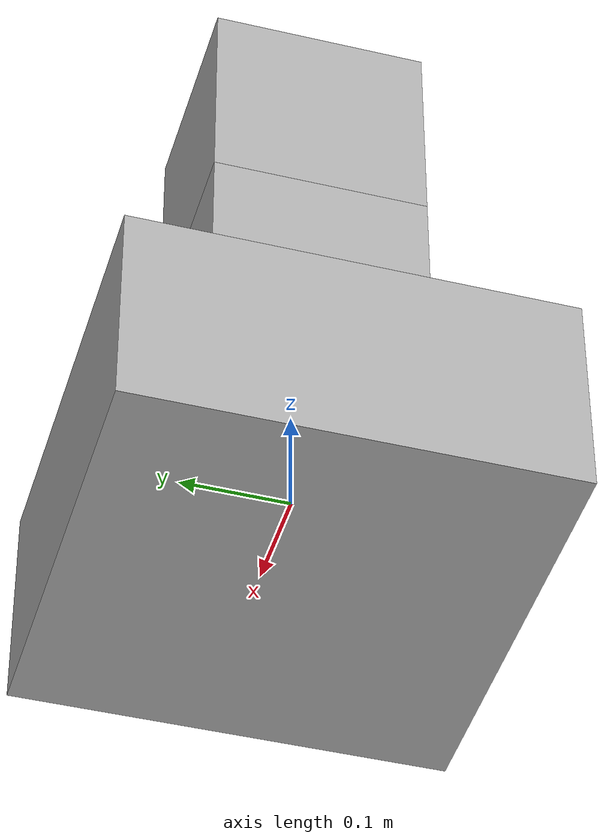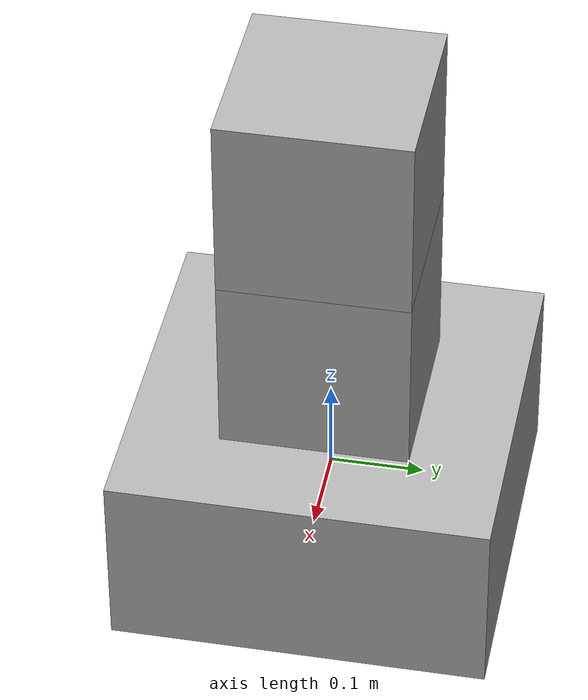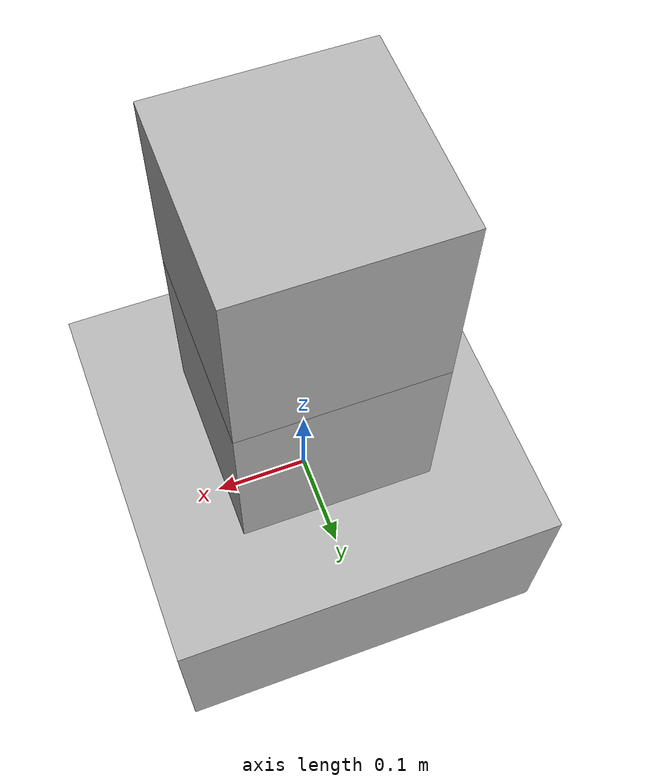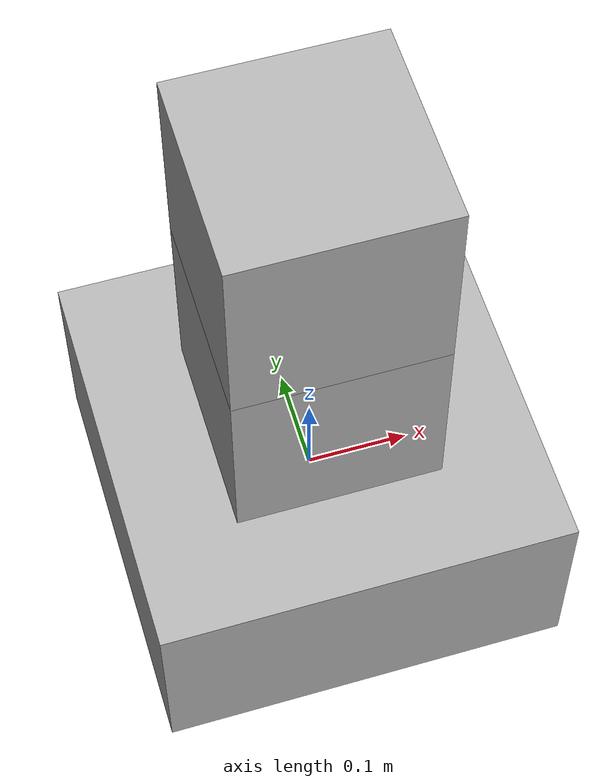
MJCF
<mujoco model="test_robot">
  <compiler angle="radian" meshdir="assets"/>

  <default>
    <joint armature="0.01" frictionloss="0.1"/>
    <geom type="box" size="0.1 0.1 0.1" rgba="0.7 0.7 0.7 1"/>
  </default>

  <worldbody>
    <body name="base" pos="0 0 0">
      <geom name="base_geom" type="box" size="0.2 0.2 0.1"/>
      <joint name="base_joint" type="free"/>

      <body name="link1" pos="0 0 0.2">
        <geom name="link1_geom" type="box" size="0.1 0.1 0.1"/>
        <joint name="joint1" type="hinge" axis="0 0 1" range="-1.57 1.57"/>

        <body name="link2" pos="0 0 0.2">
          <geom name="link2_geom" type="box" size="0.1 0.1 0.1"/>
          <joint name="joint2" type="hinge" axis="0 1 0" range="-1.57 1.57"/>
        </body>
      </body>
    </body>
  </worldbody>

  <actuator>
    <motor joint="joint1" gear="1"/>
    <motor joint="joint2" gear="1"/>
  </actuator>
</mujoco>
